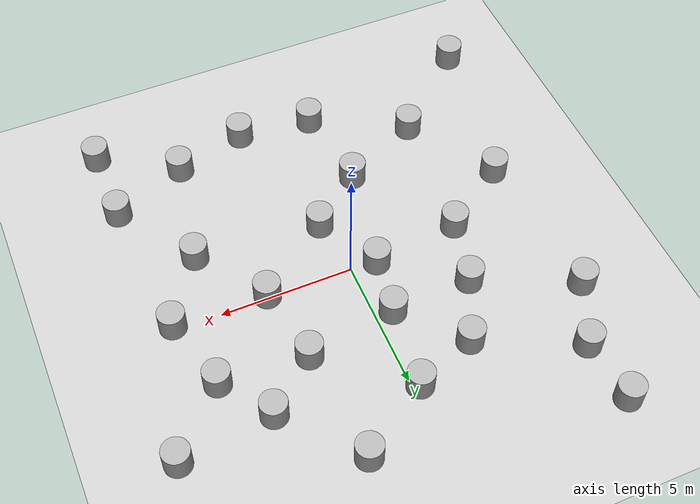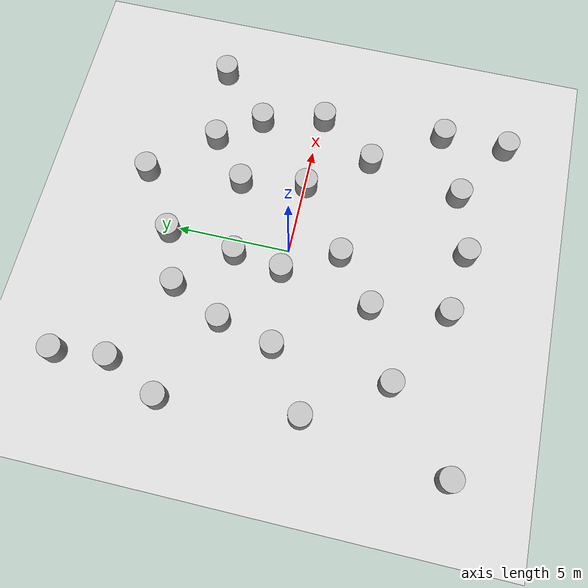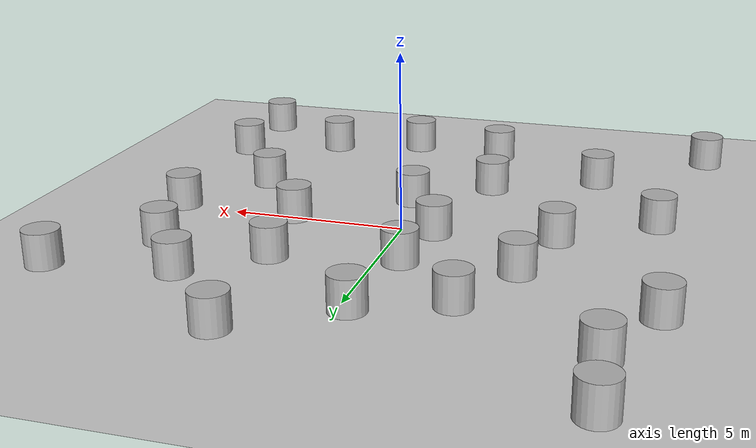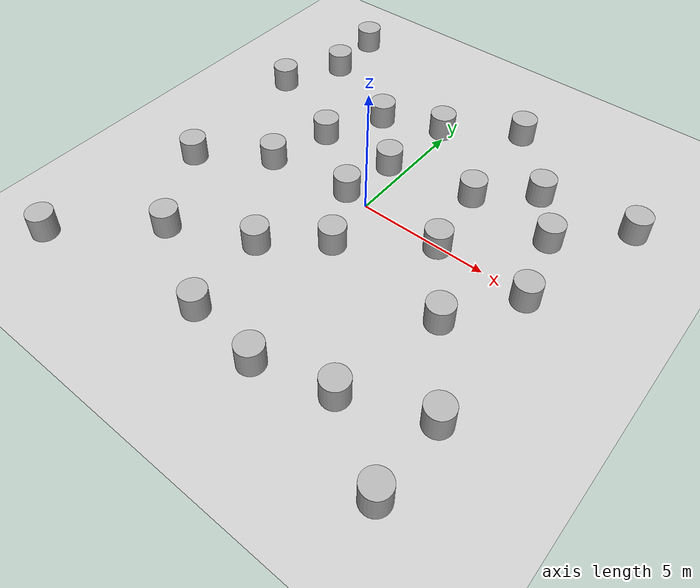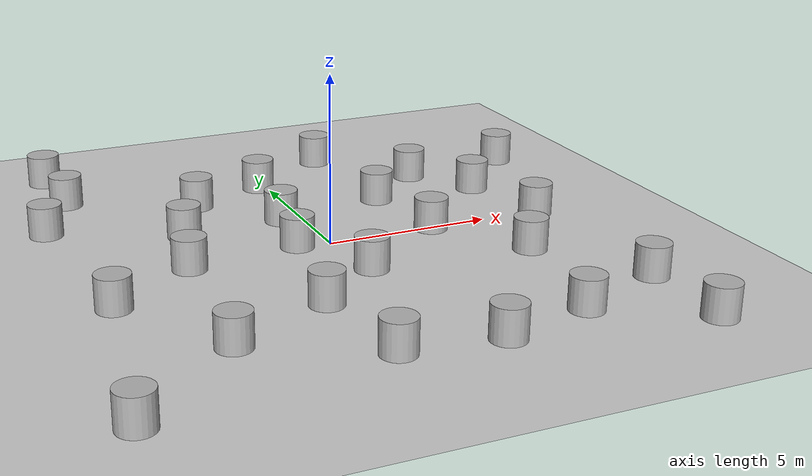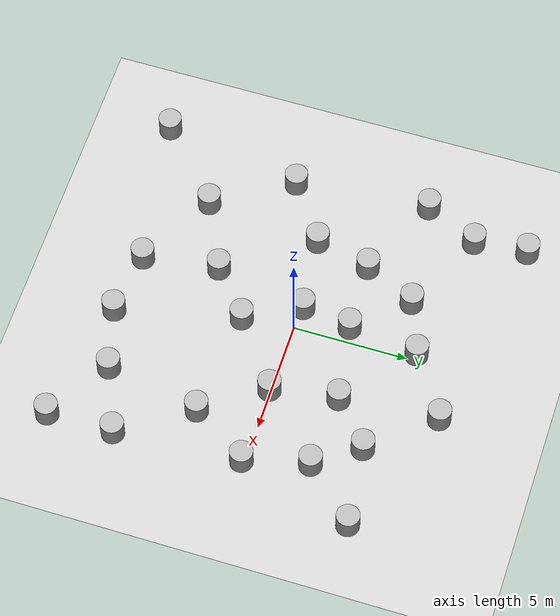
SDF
<sdf version="1.9">
 <world name="empty">
  <physics name="1ms" type="ignored">
   <max_step_size>0.001</max_step_size>
   <real_time_factor>1</real_time_factor>
   <real_time_update_rate>1000</real_time_update_rate>
  </physics>
  <plugin name="gz::sim::systems::Physics" filename="gz-sim-physics-system"/>
  <plugin name="gz::sim::systems::UserCommands" filename="gz-sim-user-commands-system"/>
  <plugin name="gz::sim::systems::SceneBroadcaster" filename="gz-sim-scene-broadcaster-system"/>
  <plugin name="gz::sim::systems::Contact" filename="gz-sim-contact-system"/>
  <gravity>0 0 -9.8000000000000007</gravity>
  <magnetic_field>5.5644999999999998e-06 2.2875799999999999e-05 -4.2388400000000002e-05</magnetic_field>
  <atmosphere type="adiabatic"/>
  <scene>
   <ambient>0.400000006 0.400000006 0.400000006 1</ambient>
   <background>0.699999988 0.699999988 0.699999988 1</background>
   <shadows>true</shadows>
  </scene>
  <model name="ground_plane">
   <static>true</static>
   <link name="link">
    <collision name="collision">
     <geometry><plane><normal>0 0 1</normal><size>100 100</size></plane></geometry>
    </collision>
    <visual name="visual">
     <geometry><plane><normal>0 0 1</normal><size>100 100</size></plane></geometry>
     <material>
      <ambient>0.800000012 0.800000012 0.800000012 1</ambient>
      <diffuse>0.800000012 0.800000012 0.800000012 1</diffuse>
      <specular>0.800000012 0.800000012 0.800000012 1</specular>
     </material>
    </visual>
    <inertial>
     <mass>1</mass>
     <inertia><ixx>1</ixx><ixy>0</ixy><ixz>0</ixz><iyy>1</iyy><iyz>0</iyz><izz>1</izz></inertia>
    </inertial>
   </link>
  </model>
  <model name="cylinder">
   <pose>-7.9582188289871585 -8.2408014955612003 0.5 0 0 0</pose>
   <link name="cylinder_link">
    <inertial>
     <inertia>
      <ixx>0.14580000000000001</ixx>
      <ixy>0</ixy>
      <ixz>0</ixz>
      <iyy>0.14580000000000001</iyy>
      <iyz>0</iyz>
      <izz>0.125</izz>
     </inertia>
     <mass>1</mass>
    </inertial>
    <collision name="cylinder_collision">
     <geometry><cylinder><radius>0.5</radius><length>1</length></cylinder></geometry>
    </collision>
    <visual name="cylinder_visual">
     <geometry><cylinder><radius>0.5</radius><length>1</length></cylinder></geometry>
     <material>
      <ambient>0.300000012 0.300000012 0.300000012 1</ambient>
      <diffuse>0.699999988 0.699999988 0.699999988 1</diffuse>
      <specular>1 1 1 1</specular>
     </material>
    </visual>
   </link>
   <static>false</static>
  </model>
  <model name="cylinder_0">
   <pose>-4.7689098390794165 -5.3658356320725842 0.5 0 0 0</pose>
   <link name="cylinder_link">
    <inertial>
     <inertia>
      <ixx>0.14580000000000001</ixx>
      <ixy>0</ixy>
      <ixz>0</ixz>
      <iyy>0.14580000000000001</iyy>
      <iyz>0</iyz>
      <izz>0.125</izz>
     </inertia>
     <mass>1</mass>
    </inertial>
    <collision name="cylinder_collision">
     <geometry><cylinder><radius>0.5</radius><length>1</length></cylinder></geometry>
    </collision>
    <visual name="cylinder_visual">
     <geometry><cylinder><radius>0.5</radius><length>1</length></cylinder></geometry>
     <material>
      <ambient>0.300000012 0.300000012 0.300000012 1</ambient>
      <diffuse>0.699999988 0.699999988 0.699999988 1</diffuse>
      <specular>1 1 1 1</specular>
     </material>
    </visual>
   </link>
   <static>false</static>
  </model>
  <model name="cylinder_0_1">
   <pose>-1.2846285407563531 -7.2230414998606118 0.5 0 0 0</pose>
   <link name="cylinder_link">
    <inertial>
     <inertia>
      <ixx>0.14580000000000001</ixx>
      <ixy>0</ixy>
      <ixz>0</ixz>
      <iyy>0.14580000000000001</iyy>
      <iyz>0</iyz>
      <izz>0.125</izz>
     </inertia>
     <mass>1</mass>
    </inertial>
    <collision name="cylinder_collision">
     <geometry><cylinder><radius>0.5</radius><length>1</length></cylinder></geometry>
    </collision>
    <visual name="cylinder_visual">
     <geometry><cylinder><radius>0.5</radius><length>1</length></cylinder></geometry>
     <material>
      <ambient>0.300000012 0.300000012 0.300000012 1</ambient>
      <diffuse>0.699999988 0.699999988 0.699999988 1</diffuse>
      <specular>1 1 1 1</specular>
     </material>
    </visual>
   </link>
   <static>false</static>
  </model>
  <model name="cylinder_0_3">
   <pose>-1.7476989533193272 -3.9299679526938514 0.5 0 0 0</pose>
   <link name="cylinder_link">
    <inertial>
     <inertia>
      <ixx>0.14580000000000001</ixx>
      <ixy>0</ixy>
      <ixz>0</ixz>
      <iyy>0.14580000000000001</iyy>
      <iyz>0</iyz>
      <izz>0.125</izz>
     </inertia>
     <mass>1</mass>
    </inertial>
    <collision name="cylinder_collision">
     <geometry><cylinder><radius>0.5</radius><length>1</length></cylinder></geometry>
    </collision>
    <visual name="cylinder_visual">
     <geometry><cylinder><radius>0.5</radius><length>1</length></cylinder></geometry>
     <material>
      <ambient>0.300000012 0.300000012 0.300000012 1</ambient>
      <diffuse>0.699999988 0.699999988 0.699999988 1</diffuse>
      <specular>1 1 1 1</specular>
     </material>
    </visual>
   </link>
   <static>false</static>
  </model>
  <model name="cylinder_0_4">
   <pose>0.29713043711622333 -2.2370378673246614 0.5 0 0 0</pose>
   <link name="cylinder_link">
    <inertial>
     <inertia>
      <ixx>0.14580000000000001</ixx>
      <ixy>0</ixy>
      <ixz>0</ixz>
      <iyy>0.14580000000000001</iyy>
      <iyz>0</iyz>
      <izz>0.125</izz>
     </inertia>
     <mass>1</mass>
    </inertial>
    <collision name="cylinder_collision">
     <geometry><cylinder><radius>0.5</radius><length>1</length></cylinder></geometry>
    </collision>
    <visual name="cylinder_visual">
     <geometry><cylinder><radius>0.5</radius><length>1</length></cylinder></geometry>
     <material>
      <ambient>0.300000012 0.300000012 0.300000012 1</ambient>
      <diffuse>0.699999988 0.699999988 0.699999988 1</diffuse>
      <specular>1 1 1 1</specular>
     </material>
    </visual>
   </link>
   <static>false</static>
  </model>
  <model name="cylinder_0_5">
   <pose>-0.97476028285796623 0.11264812314027584 0.5 0 0 0</pose>
   <link name="cylinder_link">
    <inertial>
     <inertia>
      <ixx>0.14580000000000001</ixx>
      <ixy>0</ixy>
      <ixz>0</ixz>
      <iyy>0.14580000000000001</iyy>
      <iyz>0</iyz>
      <izz>0.125</izz>
     </inertia>
     <mass>1</mass>
    </inertial>
    <collision name="cylinder_collision">
     <geometry><cylinder><radius>0.5</radius><length>1</length></cylinder></geometry>
    </collision>
    <visual name="cylinder_visual">
     <geometry><cylinder><radius>0.5</radius><length>1</length></cylinder></geometry>
     <material>
      <ambient>0.300000012 0.300000012 0.300000012 1</ambient>
      <diffuse>0.699999988 0.699999988 0.699999988 1</diffuse>
      <specular>1 1 1 1</specular>
     </material>
    </visual>
   </link>
   <static>false</static>
  </model>
  <model name="cylinder_0_6">
   <pose>-4.3040829682604098 -0.27777435653668636 0.5 0 0 0</pose>
   <link name="cylinder_link">
    <inertial>
     <inertia>
      <ixx>0.14580000000000001</ixx>
      <ixy>0</ixy>
      <ixz>0</ixz>
      <iyy>0.14580000000000001</iyy>
      <iyz>0</iyz>
      <izz>0.125</izz>
     </inertia>
     <mass>1</mass>
    </inertial>
    <collision name="cylinder_collision">
     <geometry><cylinder><radius>0.5</radius><length>1</length></cylinder></geometry>
    </collision>
    <visual name="cylinder_visual">
     <geometry><cylinder><radius>0.5</radius><length>1</length></cylinder></geometry>
     <material>
      <ambient>0.300000012 0.300000012 0.300000012 1</ambient>
      <diffuse>0.699999988 0.699999988 0.699999988 1</diffuse>
      <specular>1 1 1 1</specular>
     </material>
    </visual>
   </link>
   <static>false</static>
  </model>
  <model name="cylinder_0_7">
   <pose>-6.8701076201414928 -2.0522682994086785 0.5 0 0 0</pose>
   <link name="cylinder_link">
    <inertial>
     <inertia>
      <ixx>0.14580000000000001</ixx>
      <ixy>0</ixy>
      <ixz>0</ixz>
      <iyy>0.14580000000000001</iyy>
      <iyz>0</iyz>
      <izz>0.125</izz>
     </inertia>
     <mass>1</mass>
    </inertial>
    <collision name="cylinder_collision">
     <geometry><cylinder><radius>0.5</radius><length>1</length></cylinder></geometry>
    </collision>
    <visual name="cylinder_visual">
     <geometry><cylinder><radius>0.5</radius><length>1</length></cylinder></geometry>
     <material>
      <ambient>0.300000012 0.300000012 0.300000012 1</ambient>
      <diffuse>0.699999988 0.699999988 0.699999988 1</diffuse>
      <specular>1 1 1 1</specular>
     </material>
    </visual>
   </link>
   <static>false</static>
  </model>
  <model name="cylinder_0_8">
   <pose>7.0708762413521828 -5.6708302772032173 0.5 0 0 0</pose>
   <link name="cylinder_link">
    <inertial>
     <inertia>
      <ixx>0.14580000000000001</ixx>
      <ixy>0</ixy>
      <ixz>0</ixz>
      <iyy>0.14580000000000001</iyy>
      <iyz>0</iyz>
      <izz>0.125</izz>
     </inertia>
     <mass>1</mass>
    </inertial>
    <collision name="cylinder_collision">
     <geometry><cylinder><radius>0.5</radius><length>1</length></cylinder></geometry>
    </collision>
    <visual name="cylinder_visual">
     <geometry><cylinder><radius>0.5</radius><length>1</length></cylinder></geometry>
     <material>
      <ambient>0.300000012 0.300000012 0.300000012 1</ambient>
      <diffuse>0.699999988 0.699999988 0.699999988 1</diffuse>
      <specular>1 1 1 1</specular>
     </material>
    </visual>
   </link>
   <static>false</static>
  </model>
  <model name="cylinder_0_9">
   <pose>4.2384971149957966 -6.8358561032355478 0.5 0 0 0</pose>
   <link name="cylinder_link">
    <inertial>
     <inertia>
      <ixx>0.14580000000000001</ixx>
      <ixy>0</ixy>
      <ixz>0</ixz>
      <iyy>0.14580000000000001</iyy>
      <iyz>0</iyz>
      <izz>0.125</izz>
     </inertia>
     <mass>1</mass>
    </inertial>
    <collision name="cylinder_collision">
     <geometry><cylinder><radius>0.5</radius><length>1</length></cylinder></geometry>
    </collision>
    <visual name="cylinder_visual">
     <geometry><cylinder><radius>0.5</radius><length>1</length></cylinder></geometry>
     <material>
      <ambient>0.300000012 0.300000012 0.300000012 1</ambient>
      <diffuse>0.699999988 0.699999988 0.699999988 1</diffuse>
      <specular>1 1 1 1</specular>
     </material>
    </visual>
   </link>
   <static>false</static>
  </model>
  <model name="cylinder_0_10">
   <pose>6.7213432796303447 -0.16079295344404354 0.5 0 0 0</pose>
   <link name="cylinder_link">
    <inertial>
     <inertia>
      <ixx>0.14580000000000001</ixx>
      <ixy>0</ixy>
      <ixz>0</ixz>
      <iyy>0.14580000000000001</iyy>
      <iyz>0</iyz>
      <izz>0.125</izz>
     </inertia>
     <mass>1</mass>
    </inertial>
    <collision name="cylinder_collision">
     <geometry><cylinder><radius>0.5</radius><length>1</length></cylinder></geometry>
    </collision>
    <visual name="cylinder_visual">
     <geometry><cylinder><radius>0.5</radius><length>1</length></cylinder></geometry>
     <material>
      <ambient>0.300000012 0.300000012 0.300000012 1</ambient>
      <diffuse>0.699999988 0.699999988 0.699999988 1</diffuse>
      <specular>1 1 1 1</specular>
     </material>
    </visual>
   </link>
   <static>false</static>
  </model>
  <model name="cylinder_0_11">
   <pose>5.0561634662691652 -2.6639685578026171 0.5 0 0 0</pose>
   <link name="cylinder_link">
    <inertial>
     <inertia>
      <ixx>0.14580000000000001</ixx>
      <ixy>0</ixy>
      <ixz>0</ixz>
      <iyy>0.14580000000000001</iyy>
      <iyz>0</iyz>
      <izz>0.125</izz>
     </inertia>
     <mass>1</mass>
    </inertial>
    <collision name="cylinder_collision">
     <geometry><cylinder><radius>0.5</radius><length>1</length></cylinder></geometry>
    </collision>
    <visual name="cylinder_visual">
     <geometry><cylinder><radius>0.5</radius><length>1</length></cylinder></geometry>
     <material>
      <ambient>0.300000012 0.300000012 0.300000012 1</ambient>
      <diffuse>0.699999988 0.699999988 0.699999988 1</diffuse>
      <specular>1 1 1 1</specular>
     </material>
    </visual>
   </link>
   <static>false</static>
  </model>
  <model name="cylinder_0_12">
   <pose>4.6913162663769725 4.4696995287256733 0.5 0 0 0</pose>
   <link name="cylinder_link">
    <inertial>
     <inertia>
      <ixx>0.14580000000000001</ixx>
      <ixy>0</ixy>
      <ixz>0</ixz>
      <iyy>0.14580000000000001</iyy>
      <iyz>0</iyz>
      <izz>0.125</izz>
     </inertia>
     <mass>1</mass>
    </inertial>
    <collision name="cylinder_collision">
     <geometry><cylinder><radius>0.5</radius><length>1</length></cylinder></geometry>
    </collision>
    <visual name="cylinder_visual">
     <geometry><cylinder><radius>0.5</radius><length>1</length></cylinder></geometry>
     <material>
      <ambient>0.300000012 0.300000012 0.300000012 1</ambient>
      <diffuse>0.699999988 0.699999988 0.699999988 1</diffuse>
      <specular>1 1 1 1</specular>
     </material>
    </visual>
   </link>
   <static>false</static>
  </model>
  <model name="cylinder_0_13">
   <pose>2.7618754806473369 2.8326818617087657 0.5 0 0 0</pose>
   <link name="cylinder_link">
    <inertial>
     <inertia>
      <ixx>0.14580000000000001</ixx>
      <ixy>0</ixy>
      <ixz>0</ixz>
      <iyy>0.14580000000000001</iyy>
      <iyz>0</iyz>
      <izz>0.125</izz>
     </inertia>
     <mass>1</mass>
    </inertial>
    <collision name="cylinder_collision">
     <geometry><cylinder><radius>0.5</radius><length>1</length></cylinder></geometry>
    </collision>
    <visual name="cylinder_visual">
     <geometry><cylinder><radius>0.5</radius><length>1</length></cylinder></geometry>
     <material>
      <ambient>0.300000012 0.300000012 0.300000012 1</ambient>
      <diffuse>0.699999988 0.699999988 0.699999988 1</diffuse>
      <specular>1 1 1 1</specular>
     </material>
    </visual>
   </link>
   <static>false</static>
  </model>
  <model name="cylinder_0_14">
   <pose>3.209358960537001 -0.066054985119245124 0.5 0 0 0</pose>
   <link name="cylinder_link">
    <inertial>
     <inertia>
      <ixx>0.14580000000000001</ixx>
      <ixy>0</ixy>
      <ixz>0</ixz>
      <iyy>0.14580000000000001</iyy>
      <iyz>0</iyz>
      <izz>0.125</izz>
     </inertia>
     <mass>1</mass>
    </inertial>
    <collision name="cylinder_collision">
     <geometry><cylinder><radius>0.5</radius><length>1</length></cylinder></geometry>
    </collision>
    <visual name="cylinder_visual">
     <geometry><cylinder><radius>0.5</radius><length>1</length></cylinder></geometry>
     <material>
      <ambient>0.300000012 0.300000012 0.300000012 1</ambient>
      <diffuse>0.699999988 0.699999988 0.699999988 1</diffuse>
      <specular>1 1 1 1</specular>
     </material>
    </visual>
   </link>
   <static>false</static>
  </model>
  <model name="cylinder_0_15">
   <pose>-2.6065927750376332 4.4459944081017309 0.5 0 0 0</pose>
   <link name="cylinder_link">
    <inertial>
     <inertia>
      <ixx>0.14580000000000001</ixx>
      <ixy>0</ixy>
      <ixz>0</ixz>
      <iyy>0.14580000000000001</iyy>
      <iyz>0</iyz>
      <izz>0.125</izz>
     </inertia>
     <mass>1</mass>
    </inertial>
    <collision name="cylinder_collision">
     <geometry><cylinder><radius>0.5</radius><length>1</length></cylinder></geometry>
    </collision>
    <visual name="cylinder_visual">
     <geometry><cylinder><radius>0.5</radius><length>1</length></cylinder></geometry>
     <material>
      <ambient>0.300000012 0.300000012 0.300000012 1</ambient>
      <diffuse>0.699999988 0.699999988 0.699999988 1</diffuse>
      <specular>1 1 1 1</specular>
     </material>
    </visual>
   </link>
   <static>false</static>
  </model>
  <model name="cylinder_0_16">
   <pose>-0.6427770529800334 2.2802547662055366 0.5 0 0 0</pose>
   <link name="cylinder_link">
    <inertial>
     <inertia>
      <ixx>0.14580000000000001</ixx>
      <ixy>0</ixy>
      <ixz>0</ixz>
      <iyy>0.14580000000000001</iyy>
      <iyz>0</iyz>
      <izz>0.125</izz>
     </inertia>
     <mass>1</mass>
    </inertial>
    <collision name="cylinder_collision">
     <geometry><cylinder><radius>0.5</radius><length>1</length></cylinder></geometry>
    </collision>
    <visual name="cylinder_visual">
     <geometry><cylinder><radius>0.5</radius><length>1</length></cylinder></geometry>
     <material>
      <ambient>0.300000012 0.300000012 0.300000012 1</ambient>
      <diffuse>0.699999988 0.699999988 0.699999988 1</diffuse>
      <specular>1 1 1 1</specular>
     </material>
    </visual>
   </link>
   <static>false</static>
  </model>
  <model name="cylinder_0_17">
   <pose>-3.7043607199179682 2.1672845552822908 0.5 0 0 0</pose>
   <link name="cylinder_link">
    <inertial>
     <inertia>
      <ixx>0.14580000000000001</ixx>
      <ixy>0</ixy>
      <ixz>0</ixz>
      <iyy>0.14580000000000001</iyy>
      <iyz>0</iyz>
      <izz>0.125</izz>
     </inertia>
     <mass>1</mass>
    </inertial>
    <collision name="cylinder_collision">
     <geometry><cylinder><radius>0.5</radius><length>1</length></cylinder></geometry>
    </collision>
    <visual name="cylinder_visual">
     <geometry><cylinder><radius>0.5</radius><length>1</length></cylinder></geometry>
     <material>
      <ambient>0.300000012 0.300000012 0.300000012 1</ambient>
      <diffuse>0.699999988 0.699999988 0.699999988 1</diffuse>
      <specular>1 1 1 1</specular>
     </material>
    </visual>
   </link>
   <static>false</static>
  </model>
  <model name="cylinder_0_18">
   <pose>-7.3964473450466492 3.8323405904270551 0.5 0 0 0</pose>
   <link name="cylinder_link">
    <inertial>
     <inertia>
      <ixx>0.14580000000000001</ixx>
      <ixy>0</ixy>
      <ixz>0</ixz>
      <iyy>0.14580000000000001</iyy>
      <iyz>0</iyz>
      <izz>0.125</izz>
     </inertia>
     <mass>1</mass>
    </inertial>
    <collision name="cylinder_collision">
     <geometry><cylinder><radius>0.5</radius><length>1</length></cylinder></geometry>
    </collision>
    <visual name="cylinder_visual">
     <geometry><cylinder><radius>0.5</radius><length>1</length></cylinder></geometry>
     <material>
      <ambient>0.300000012 0.300000012 0.300000012 1</ambient>
      <diffuse>0.699999988 0.699999988 0.699999988 1</diffuse>
      <specular>1 1 1 1</specular>
     </material>
    </visual>
   </link>
   <static>false</static>
  </model>
  <model name="cylinder_0_19">
   <pose>6.0343241210557981 2.6174387151661662 0.5 0 0 0</pose>
   <link name="cylinder_link">
    <inertial>
     <inertia>
      <ixx>0.14580000000000001</ixx>
      <ixy>0</ixy>
      <ixz>0</ixz>
      <iyy>0.14580000000000001</iyy>
      <iyz>0</iyz>
      <izz>0.125</izz>
     </inertia>
     <mass>1</mass>
    </inertial>
    <collision name="cylinder_collision">
     <geometry><cylinder><radius>0.5</radius><length>1</length></cylinder></geometry>
    </collision>
    <visual name="cylinder_visual">
     <geometry><cylinder><radius>0.5</radius><length>1</length></cylinder></geometry>
     <material>
      <ambient>0.300000012 0.300000012 0.300000012 1</ambient>
      <diffuse>0.699999988 0.699999988 0.699999988 1</diffuse>
      <specular>1 1 1 1</specular>
     </material>
    </visual>
   </link>
   <static>false</static>
  </model>
  <model name="cylinder_0_20">
   <pose>8.1857696792832542 4.8787573106532367 0.5 0 0 0</pose>
   <link name="cylinder_link">
    <inertial>
     <inertia>
      <ixx>0.14580000000000001</ixx>
      <ixy>0</ixy>
      <ixz>0</ixz>
      <iyy>0.14580000000000001</iyy>
      <iyz>0</iyz>
      <izz>0.125</izz>
     </inertia>
     <mass>1</mass>
    </inertial>
    <collision name="cylinder_collision">
     <geometry><cylinder><radius>0.5</radius><length>1</length></cylinder></geometry>
    </collision>
    <visual name="cylinder_visual">
     <geometry><cylinder><radius>0.5</radius><length>1</length></cylinder></geometry>
     <material>
      <ambient>0.300000012 0.300000012 0.300000012 1</ambient>
      <diffuse>0.699999988 0.699999988 0.699999988 1</diffuse>
      <specular>1 1 1 1</specular>
     </material>
    </visual>
   </link>
   <static>false</static>
  </model>
  <model name="cylinder_0_21">
   <pose>2.4003857939975433 7.1039083183853364 0.5 0 0 0</pose>
   <link name="cylinder_link">
    <inertial>
     <inertia>
      <ixx>0.14580000000000001</ixx>
      <ixy>0</ixy>
      <ixz>0</ixz>
      <iyy>0.14580000000000001</iyy>
      <iyz>0</iyz>
      <izz>0.125</izz>
     </inertia>
     <mass>1</mass>
    </inertial>
    <collision name="cylinder_collision">
     <geometry><cylinder><radius>0.5</radius><length>1</length></cylinder></geometry>
    </collision>
    <visual name="cylinder_visual">
     <geometry><cylinder><radius>0.5</radius><length>1</length></cylinder></geometry>
     <material>
      <ambient>0.300000012 0.300000012 0.300000012 1</ambient>
      <diffuse>0.699999988 0.699999988 0.699999988 1</diffuse>
      <specular>1 1 1 1</specular>
     </material>
    </visual>
   </link>
   <static>false</static>
  </model>
  <model name="cylinder_0_22">
   <pose>-0.26903946237242415 5.3462437308344981 0.5 0 0 0</pose>
   <link name="cylinder_link">
    <inertial>
     <inertia>
      <ixx>0.14580000000000001</ixx>
      <ixy>0</ixy>
      <ixz>0</ixz>
      <iyy>0.14580000000000001</iyy>
      <iyz>0</iyz>
      <izz>0.125</izz>
     </inertia>
     <mass>1</mass>
    </inertial>
    <collision name="cylinder_collision">
     <geometry><cylinder><radius>0.5</radius><length>1</length></cylinder></geometry>
    </collision>
    <visual name="cylinder_visual">
     <geometry><cylinder><radius>0.5</radius><length>1</length></cylinder></geometry>
     <material>
      <ambient>0.300000012 0.300000012 0.300000012 1</ambient>
      <diffuse>0.699999988 0.699999988 0.699999988 1</diffuse>
      <specular>1 1 1 1</specular>
     </material>
    </visual>
   </link>
   <static>false</static>
  </model>
  <model name="cylinder_0_23">
   <pose>-6.4944431288210538 8.5147741985101533 0.5 0 0 0</pose>
   <link name="cylinder_link">
    <inertial>
     <inertia>
      <ixx>0.14580000000000001</ixx>
      <ixy>0</ixy>
      <ixz>0</ixz>
      <iyy>0.14580000000000001</iyy>
      <iyz>0</iyz>
      <izz>0.125</izz>
     </inertia>
     <mass>1</mass>
    </inertial>
    <collision name="cylinder_collision">
     <geometry><cylinder><radius>0.5</radius><length>1</length></cylinder></geometry>
    </collision>
    <visual name="cylinder_visual">
     <geometry><cylinder><radius>0.5</radius><length>1</length></cylinder></geometry>
     <material>
      <ambient>0.300000012 0.300000012 0.300000012 1</ambient>
      <diffuse>0.699999988 0.699999988 0.699999988 1</diffuse>
      <specular>1 1 1 1</specular>
     </material>
    </visual>
   </link>
   <static>false</static>
  </model>
  <model name="cylinder_0_24">
   <pose>-6.2930970941034339 6.1749188275535705 0.5 0 0 0</pose>
   <link name="cylinder_link">
    <inertial>
     <inertia>
      <ixx>0.14580000000000001</ixx>
      <ixy>0</ixy>
      <ixz>0</ixz>
      <iyy>0.14580000000000001</iyy>
      <iyz>0</iyz>
      <izz>0.125</izz>
     </inertia>
     <mass>1</mass>
    </inertial>
    <collision name="cylinder_collision">
     <geometry><cylinder><radius>0.5</radius><length>1</length></cylinder></geometry>
    </collision>
    <visual name="cylinder_visual">
     <geometry><cylinder><radius>0.5</radius><length>1</length></cylinder></geometry>
     <material>
      <ambient>0.300000012 0.300000012 0.300000012 1</ambient>
      <diffuse>0.699999988 0.699999988 0.699999988 1</diffuse>
      <specular>1 1 1 1</specular>
     </material>
    </visual>
   </link>
   <static>false</static>
  </model>
  <model name="cylinder_0_25">
   <pose>1.5252095275070481 -7.5596629332719179 0.5 0 0 0</pose>
   <link name="cylinder_link">
    <inertial>
     <inertia>
      <ixx>0.14580000000000001</ixx>
      <ixy>0</ixy>
      <ixz>0</ixz>
      <iyy>0.14580000000000001</iyy>
      <iyz>0</iyz>
      <izz>0.125</izz>
     </inertia>
     <mass>1</mass>
    </inertial>
    <collision name="cylinder_collision">
     <geometry><cylinder><radius>0.5</radius><length>1</length></cylinder></geometry>
    </collision>
    <visual name="cylinder_visual">
     <geometry><cylinder><radius>0.5</radius><length>1</length></cylinder></geometry>
     <material>
      <ambient>0.300000012 0.300000012 0.300000012 1</ambient>
      <diffuse>0.699999988 0.699999988 0.699999988 1</diffuse>
      <specular>1 1 1 1</specular>
     </material>
    </visual>
   </link>
   <static>false</static>
  </model>
  <model name="cylinder_0_26">
   <pose>7.0688825449654793 -8.5769502741223995 0.5 0 0 0</pose>
   <link name="cylinder_link">
    <inertial>
     <inertia>
      <ixx>0.14580000000000001</ixx>
      <ixy>0</ixy>
      <ixz>0</ixz>
      <iyy>0.14580000000000001</iyy>
      <iyz>0</iyz>
      <izz>0.125</izz>
     </inertia>
     <mass>1</mass>
    </inertial>
    <collision name="cylinder_collision">
     <geometry><cylinder><radius>0.5</radius><length>1</length></cylinder></geometry>
    </collision>
    <visual name="cylinder_visual">
     <geometry><cylinder><radius>0.5</radius><length>1</length></cylinder></geometry>
     <material>
      <ambient>0.300000012 0.300000012 0.300000012 1</ambient>
      <diffuse>0.699999988 0.699999988 0.699999988 1</diffuse>
      <specular>1 1 1 1</specular>
     </material>
    </visual>
   </link>
   <static>false</static>
  </model>
  <light name="sun" type="directional">
   <pose>0 0 10 0 0 0</pose>
   <intensity>1</intensity>
   <direction>-0.5 0.10000000000000001 -0.90000000000000002</direction>
   <diffuse>0.800000012 0.800000012 0.800000012 1</diffuse>
   <specular>0.200000003 0.200000003 0.200000003 1</specular>
   <attenuation>
    <range>1000</range>
    <linear>0.01</linear>
    <constant>0.90000000000000002</constant>
    <quadratic>0.001</quadratic>
   </attenuation>
   <spot><inner_angle>0</inner_angle><outer_angle>0</outer_angle><falloff>0</falloff></spot>
  </light>
 </world>
</sdf>
